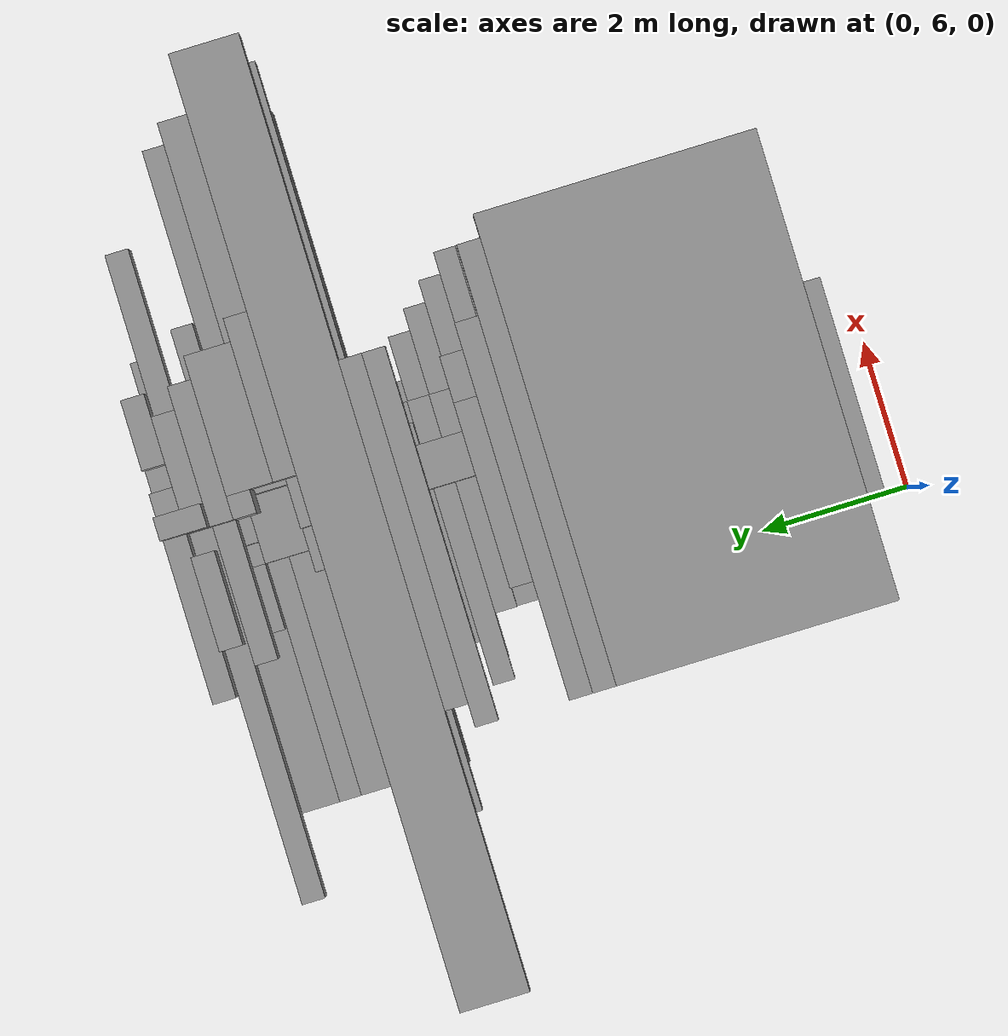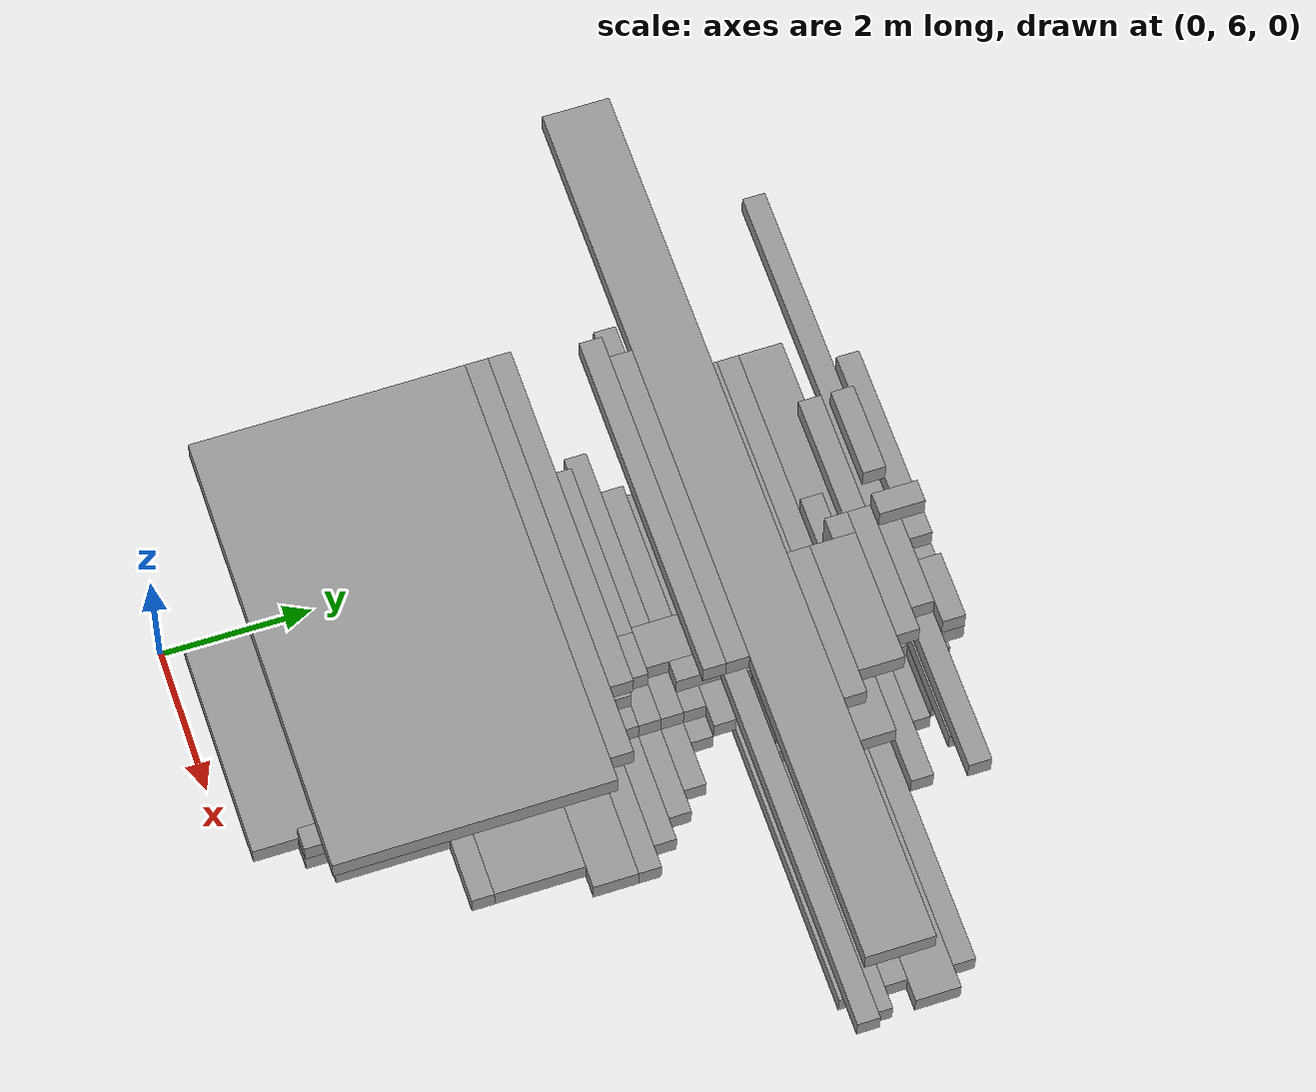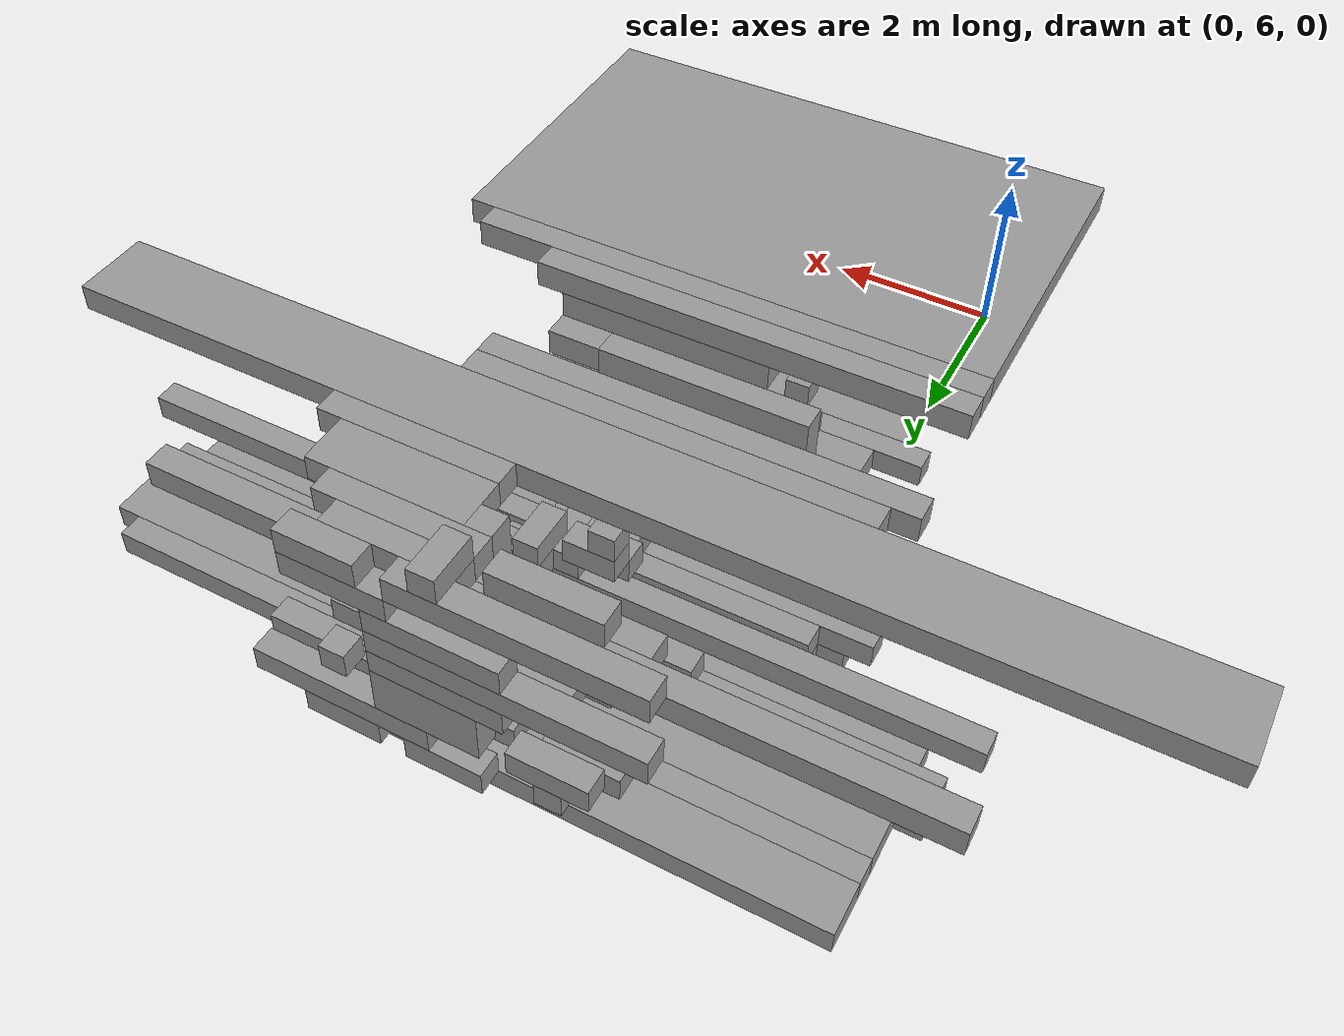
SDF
<sdf version="1.6">
 <world name="bt_world">
  <include><uri>model://sun</uri></include>
  <model name="obstacle_1805">
   <static>true</static>
   <pose>1.65 13.049999999999999 2.55 0 0 0</pose>
   <link name="link">
    <collision name="collision">
     <geometry><box><size>12.299999999999999 0.8999999999999999 0.3</size></box></geometry>
    </collision>
    <visual name="visual">
     <geometry><box><size>12.299999999999999 0.8999999999999999 0.3</size></box></geometry>
     <material><ambient>0.5 0.5 0.5 1</ambient><diffuse>0.6 0.6 0.6 1</diffuse></material>
    </visual>
   </link>
  </model>
  <model name="obstacle_1875">
   <static>true</static>
   <pose>1.5 14.85 2.25 0 0 0</pose>
   <link name="link">
    <collision name="collision"><geometry><box><size>8.4 0.3 0.3</size></box></geometry></collision>
    <visual name="visual">
     <geometry><box><size>8.4 0.3 0.3</size></box></geometry>
     <material><ambient>0.5 0.5 0.5 1</ambient><diffuse>0.6 0.6 0.6 1</diffuse></material>
    </visual>
   </link>
  </model>
  <model name="obstacle_1887">
   <static>true</static>
   <pose>2.6999999999999997 12.75 0.44999999999999996 0 0 0</pose>
   <link name="link">
    <collision name="collision"><geometry><box><size>10.2 0.3 0.3</size></box></geometry></collision>
    <visual name="visual">
     <geometry><box><size>10.2 0.3 0.3</size></box></geometry>
     <material><ambient>0.5 0.5 0.5 1</ambient><diffuse>0.6 0.6 0.6 1</diffuse></material>
    </visual>
   </link>
  </model>
  <model name="obstacle_1893">
   <static>true</static>
   <pose>2.6999999999999997 13.049999999999999 -0.15 0 0 0</pose>
   <link name="link">
    <collision name="collision"><geometry><box><size>9.6 0.3 0.3</size></box></geometry></collision>
    <visual name="visual">
     <geometry><box><size>9.6 0.3 0.3</size></box></geometry>
     <material><ambient>0.5 0.5 0.5 1</ambient><diffuse>0.6 0.6 0.6 1</diffuse></material>
    </visual>
   </link>
  </model>
  <model name="obstacle_1894">
   <static>true</static>
   <pose>2.55 13.35 -0.15 0 0 0</pose>
   <link name="link">
    <collision name="collision"><geometry><box><size>9.299999999999999 0.3 0.3</size></box></geometry></collision>
    <visual name="visual">
     <geometry><box><size>9.299999999999999 0.3 0.3</size></box></geometry>
     <material><ambient>0.5 0.5 0.5 1</ambient><diffuse>0.6 0.6 0.6 1</diffuse></material>
    </visual>
   </link>
  </model>
  <model name="obstacle_1914">
   <static>true</static>
   <pose>2.6999999999999997 12.75 -0.15 0 0 0</pose>
   <link name="link">
    <collision name="collision"><geometry><box><size>9.0 0.3 0.3</size></box></geometry></collision>
    <visual name="visual">
     <geometry><box><size>9.0 0.3 0.3</size></box></geometry>
     <material><ambient>0.5 0.5 0.5 1</ambient><diffuse>0.6 0.6 0.6 1</diffuse></material>
    </visual>
   </link>
  </model>
  <model name="obstacle_1915">
   <static>true</static>
   <pose>2.85 13.799999999999999 -0.15 0 0 0</pose>
   <link name="link">
    <collision name="collision"><geometry><box><size>9.299999999999999 0.6 0.3</size></box></geometry></collision>
    <visual name="visual">
     <geometry><box><size>9.299999999999999 0.6 0.3</size></box></geometry>
     <material><ambient>0.5 0.5 0.5 1</ambient><diffuse>0.6 0.6 0.6 1</diffuse></material>
    </visual>
   </link>
  </model>
  <model name="obstacle_1916">
   <static>true</static>
   <pose>2.6999999999999997 14.25 -0.15 0 0 0</pose>
   <link name="link">
    <collision name="collision"><geometry><box><size>9.0 0.3 0.3</size></box></geometry></collision>
    <visual name="visual">
     <geometry><box><size>9.0 0.3 0.3</size></box></geometry>
     <material><ambient>0.5 0.5 0.5 1</ambient><diffuse>0.6 0.6 0.6 1</diffuse></material>
    </visual>
   </link>
  </model>
  <model name="obstacle_1917">
   <static>true</static>
   <pose>1.05 14.7 -0.15 0 0 0</pose>
   <link name="link">
    <collision name="collision"><geometry><box><size>5.7 0.6 0.3</size></box></geometry></collision>
    <visual name="visual">
     <geometry><box><size>5.7 0.6 0.3</size></box></geometry>
     <material><ambient>0.5 0.5 0.5 1</ambient><diffuse>0.6 0.6 0.6 1</diffuse></material>
    </visual>
   </link>
  </model>
  <model name="obstacle_2006">
   <static>true</static>
   <pose>1.7999999999999998 8.7 2.85 0 0 0</pose>
   <link name="link">
    <collision name="collision">
     <geometry><box><size>6.0 3.5999999999999996 0.3</size></box></geometry>
    </collision>
    <visual name="visual">
     <geometry><box><size>6.0 3.5999999999999996 0.3</size></box></geometry>
     <material><ambient>0.5 0.5 0.5 1</ambient><diffuse>0.6 0.6 0.6 1</diffuse></material>
    </visual>
   </link>
  </model>
  <model name="obstacle_2029">
   <static>true</static>
   <pose>1.65 10.65 2.85 0 0 0</pose>
   <link name="link">
    <collision name="collision"><geometry><box><size>5.7 0.3 0.3</size></box></geometry></collision>
    <visual name="visual">
     <geometry><box><size>5.7 0.3 0.3</size></box></geometry>
     <material><ambient>0.5 0.5 0.5 1</ambient><diffuse>0.6 0.6 0.6 1</diffuse></material>
    </visual>
   </link>
  </model>
  <model name="obstacle_2030">
   <static>true</static>
   <pose>1.2 10.95 2.85 0 0 0</pose>
   <link name="link">
    <collision name="collision"><geometry><box><size>4.8 0.3 0.3</size></box></geometry></collision>
    <visual name="visual">
     <geometry><box><size>4.8 0.3 0.3</size></box></geometry>
     <material><ambient>0.5 0.5 0.5 1</ambient><diffuse>0.6 0.6 0.6 1</diffuse></material>
    </visual>
   </link>
  </model>
  <model name="obstacle_2039">
   <static>true</static>
   <pose>1.2 12.15 2.55 0 0 0</pose>
   <link name="link">
    <collision name="collision"><geometry><box><size>4.8 0.3 0.3</size></box></geometry></collision>
    <visual name="visual">
     <geometry><box><size>4.8 0.3 0.3</size></box></geometry>
     <material><ambient>0.5 0.5 0.5 1</ambient><diffuse>0.6 0.6 0.6 1</diffuse></material>
    </visual>
   </link>
  </model>
  <model name="obstacle_2092">
   <static>true</static>
   <pose>1.05 11.85 0.15 0 0 0</pose>
   <link name="link">
    <collision name="collision"><geometry><box><size>3.9 0.3 0.3</size></box></geometry></collision>
    <visual name="visual">
     <geometry><box><size>3.9 0.3 0.3</size></box></geometry>
     <material><ambient>0.5 0.5 0.5 1</ambient><diffuse>0.6 0.6 0.6 1</diffuse></material>
    </visual>
   </link>
  </model>
  <model name="obstacle_2095">
   <static>true</static>
   <pose>1.3499999999999999 12.45 2.55 0 0 0</pose>
   <link name="link">
    <collision name="collision"><geometry><box><size>4.5 0.3 0.3</size></box></geometry></collision>
    <visual name="visual">
     <geometry><box><size>4.5 0.3 0.3</size></box></geometry>
     <material><ambient>0.5 0.5 0.5 1</ambient><diffuse>0.6 0.6 0.6 1</diffuse></material>
    </visual>
   </link>
  </model>
  <model name="obstacle_2114">
   <static>true</static>
   <pose>1.65 11.85 -0.15 0 0 0</pose>
   <link name="link">
    <collision name="collision"><geometry><box><size>4.5 0.3 0.3</size></box></geometry></collision>
    <visual name="visual">
     <geometry><box><size>4.5 0.3 0.3</size></box></geometry>
     <material><ambient>0.5 0.5 0.5 1</ambient><diffuse>0.6 0.6 0.6 1</diffuse></material>
    </visual>
   </link>
  </model>
  <model name="obstacle_2136">
   <static>true</static>
   <pose>2.1 8.85 -0.15 0 0 0</pose>
   <link name="link">
    <collision name="collision"><geometry><box><size>4.8 0.3 0.3</size></box></geometry></collision>
    <visual name="visual">
     <geometry><box><size>4.8 0.3 0.3</size></box></geometry>
     <material><ambient>0.5 0.5 0.5 1</ambient><diffuse>0.6 0.6 0.6 1</diffuse></material>
    </visual>
   </link>
  </model>
  <model name="obstacle_2139">
   <static>true</static>
   <pose>1.5 12.15 -0.15 0 0 0</pose>
   <link name="link">
    <collision name="collision">
     <geometry><box><size>3.5999999999999996 0.3 0.3</size></box></geometry>
    </collision>
    <visual name="visual">
     <geometry><box><size>3.5999999999999996 0.3 0.3</size></box></geometry>
     <material><ambient>0.5 0.5 0.5 1</ambient><diffuse>0.6 0.6 0.6 1</diffuse></material>
    </visual>
   </link>
  </model>
  <model name="obstacle_2140">
   <static>true</static>
   <pose>1.3499999999999999 12.15 0.15 0 0 0</pose>
   <link name="link">
    <collision name="collision"><geometry><box><size>3.3 0.3 0.3</size></box></geometry></collision>
    <visual name="visual">
     <geometry><box><size>3.3 0.3 0.3</size></box></geometry>
     <material><ambient>0.5 0.5 0.5 1</ambient><diffuse>0.6 0.6 0.6 1</diffuse></material>
    </visual>
   </link>
  </model>
  <model name="obstacle_2141">
   <static>true</static>
   <pose>1.3499999999999999 12.45 -0.15 0 0 0</pose>
   <link name="link">
    <collision name="collision"><geometry><box><size>3.3 0.3 0.3</size></box></geometry></collision>
    <visual name="visual">
     <geometry><box><size>3.3 0.3 0.3</size></box></geometry>
     <material><ambient>0.5 0.5 0.5 1</ambient><diffuse>0.6 0.6 0.6 1</diffuse></material>
    </visual>
   </link>
  </model>
  <model name="obstacle_2156">
   <static>true</static>
   <pose>1.5 7.5 -0.15 0 0 0</pose>
   <link name="link">
    <collision name="collision"><geometry><box><size>3.0 2.4 0.3</size></box></geometry></collision>
    <visual name="visual">
     <geometry><box><size>3.0 2.4 0.3</size></box></geometry>
     <material><ambient>0.5 0.5 0.5 1</ambient><diffuse>0.6 0.6 0.6 1</diffuse></material>
    </visual>
   </link>
  </model>
  <model name="obstacle_2157">
   <static>true</static>
   <pose>2.25 11.25 -0.15 0 0 0</pose>
   <link name="link">
    <collision name="collision"><geometry><box><size>4.5 0.3 0.3</size></box></geometry></collision>
    <visual name="visual">
     <geometry><box><size>4.5 0.3 0.3</size></box></geometry>
     <material><ambient>0.5 0.5 0.5 1</ambient><diffuse>0.6 0.6 0.6 1</diffuse></material>
    </visual>
   </link>
  </model>
  <model name="obstacle_2158">
   <static>true</static>
   <pose>1.5 11.549999999999999 0.15 0 0 0</pose>
   <link name="link">
    <collision name="collision"><geometry><box><size>3.0 0.3 0.3</size></box></geometry></collision>
    <visual name="visual">
     <geometry><box><size>3.0 0.3 0.3</size></box></geometry>
     <material><ambient>0.5 0.5 0.5 1</ambient><diffuse>0.6 0.6 0.6 1</diffuse></material>
    </visual>
   </link>
  </model>
  <model name="obstacle_2161">
   <static>true</static>
   <pose>1.5 15.149999999999999 1.65 0 0 0</pose>
   <link name="link">
    <collision name="collision"><geometry><box><size>3.0 0.3 0.3</size></box></geometry></collision>
    <visual name="visual">
     <geometry><box><size>3.0 0.3 0.3</size></box></geometry>
     <material><ambient>0.5 0.5 0.5 1</ambient><diffuse>0.6 0.6 0.6 1</diffuse></material>
    </visual>
   </link>
  </model>
  <model name="obstacle_2162">
   <static>true</static>
   <pose>1.3499999999999999 15.149999999999999 2.55 0 0 0</pose>
   <link name="link">
    <collision name="collision">
     <geometry><box><size>2.6999999999999997 0.3 0.3</size></box></geometry>
    </collision>
    <visual name="visual">
     <geometry><box><size>2.6999999999999997 0.3 0.3</size></box></geometry>
     <material><ambient>0.5 0.5 0.5 1</ambient><diffuse>0.6 0.6 0.6 1</diffuse></material>
    </visual>
   </link>
  </model>
  <model name="obstacle_2173">
   <static>true</static>
   <pose>2.4 9.6 -0.15 0 0 0</pose>
   <link name="link">
    <collision name="collision"><geometry><box><size>4.2 1.2 0.3</size></box></geometry></collision>
    <visual name="visual">
     <geometry><box><size>4.2 1.2 0.3</size></box></geometry>
     <material><ambient>0.5 0.5 0.5 1</ambient><diffuse>0.6 0.6 0.6 1</diffuse></material>
    </visual>
   </link>
  </model>
  <model name="obstacle_2174">
   <static>true</static>
   <pose>1.5 11.25 1.95 0 0 0</pose>
   <link name="link">
    <collision name="collision">
     <geometry><box><size>2.4 0.3 0.8999999999999999</size></box></geometry>
    </collision>
    <visual name="visual">
     <geometry><box><size>2.4 0.3 0.8999999999999999</size></box></geometry>
     <material><ambient>0.5 0.5 0.5 1</ambient><diffuse>0.6 0.6 0.6 1</diffuse></material>
    </visual>
   </link>
  </model>
  <model name="obstacle_2175">
   <static>true</static>
   <pose>2.25 11.549999999999999 -0.15 0 0 0</pose>
   <link name="link">
    <collision name="collision"><geometry><box><size>3.9 0.3 0.3</size></box></geometry></collision>
    <visual name="visual">
     <geometry><box><size>3.9 0.3 0.3</size></box></geometry>
     <material><ambient>0.5 0.5 0.5 1</ambient><diffuse>0.6 0.6 0.6 1</diffuse></material>
    </visual>
   </link>
  </model>
  <model name="obstacle_2177">
   <static>true</static>
   <pose>1.65 14.549999999999999 2.25 0 0 0</pose>
   <link name="link">
    <collision name="collision">
     <geometry><box><size>2.6999999999999997 0.3 0.3</size></box></geometry>
    </collision>
    <visual name="visual">
     <geometry><box><size>2.6999999999999997 0.3 0.3</size></box></geometry>
     <material><ambient>0.5 0.5 0.5 1</ambient><diffuse>0.6 0.6 0.6 1</diffuse></material>
    </visual>
   </link>
  </model>
  <model name="obstacle_2194">
   <static>true</static>
   <pose>2.6999999999999997 10.95 -0.15 0 0 0</pose>
   <link name="link">
    <collision name="collision"><geometry><box><size>4.2 0.3 0.3</size></box></geometry></collision>
    <visual name="visual">
     <geometry><box><size>4.2 0.3 0.3</size></box></geometry>
     <material><ambient>0.5 0.5 0.5 1</ambient><diffuse>0.6 0.6 0.6 1</diffuse></material>
    </visual>
   </link>
  </model>
  <model name="obstacle_2195">
   <static>true</static>
   <pose>1.65 11.25 1.3499999999999999 0 0 0</pose>
   <link name="link">
    <collision name="collision"><geometry><box><size>2.1 0.3 0.3</size></box></geometry></collision>
    <visual name="visual">
     <geometry><box><size>2.1 0.3 0.3</size></box></geometry>
     <material><ambient>0.5 0.5 0.5 1</ambient><diffuse>0.6 0.6 0.6 1</diffuse></material>
    </visual>
   </link>
  </model>
  <model name="obstacle_2197">
   <static>true</static>
   <pose>1.65 13.049999999999999 0.15 0 0 0</pose>
   <link name="link">
    <collision name="collision"><geometry><box><size>2.1 0.3 0.3</size></box></geometry></collision>
    <visual name="visual">
     <geometry><box><size>2.1 0.3 0.3</size></box></geometry>
     <material><ambient>0.5 0.5 0.5 1</ambient><diffuse>0.6 0.6 0.6 1</diffuse></material>
    </visual>
   </link>
  </model>
  <model name="obstacle_2198">
   <static>true</static>
   <pose>1.05 14.549999999999999 0.15 0 0 0</pose>
   <link name="link">
    <collision name="collision">
     <geometry><box><size>0.8999999999999999 0.3 0.3</size></box></geometry>
    </collision>
    <visual name="visual">
     <geometry><box><size>0.8999999999999999 0.3 0.3</size></box></geometry>
     <material><ambient>0.5 0.5 0.5 1</ambient><diffuse>0.6 0.6 0.6 1</diffuse></material>
    </visual>
   </link>
  </model>
  <model name="obstacle_2199">
   <static>true</static>
   <pose>1.2 14.85 2.85 0 0 0</pose>
   <link name="link">
    <collision name="collision"><geometry><box><size>1.2 0.3 0.3</size></box></geometry></collision>
    <visual name="visual">
     <geometry><box><size>1.2 0.3 0.3</size></box></geometry>
     <material><ambient>0.5 0.5 0.5 1</ambient><diffuse>0.6 0.6 0.6 1</diffuse></material>
    </visual>
   </link>
  </model>
  <model name="obstacle_2200">
   <static>true</static>
   <pose>1.05 15.149999999999999 0.75 0 0 0</pose>
   <link name="link">
    <collision name="collision">
     <geometry><box><size>0.8999999999999999 0.3 0.3</size></box></geometry>
    </collision>
    <visual name="visual">
     <geometry><box><size>0.8999999999999999 0.3 0.3</size></box></geometry>
     <material><ambient>0.5 0.5 0.5 1</ambient><diffuse>0.6 0.6 0.6 1</diffuse></material>
    </visual>
   </link>
  </model>
  <model name="obstacle_2209">
   <static>true</static>
   <pose>1.3499999999999999 9.75 0.44999999999999996 0 0 0</pose>
   <link name="link">
    <collision name="collision">
     <geometry><box><size>0.8999999999999999 0.8999999999999999 0.3</size></box></geometry>
    </collision>
    <visual name="visual">
     <geometry><box><size>0.8999999999999999 0.8999999999999999 0.3</size></box></geometry>
     <material><ambient>0.5 0.5 0.5 1</ambient><diffuse>0.6 0.6 0.6 1</diffuse></material>
    </visual>
   </link>
  </model>
  <model name="obstacle_2210">
   <static>true</static>
   <pose>2.85 10.5 -0.15 0 0 0</pose>
   <link name="link">
    <collision name="collision"><geometry><box><size>3.9 0.6 0.3</size></box></geometry></collision>
    <visual name="visual">
     <geometry><box><size>3.9 0.6 0.3</size></box></geometry>
     <material><ambient>0.5 0.5 0.5 1</ambient><diffuse>0.6 0.6 0.6 1</diffuse></material>
    </visual>
   </link>
  </model>
  <model name="obstacle_2211">
   <static>true</static>
   <pose>2.1 10.95 2.55 0 0 0</pose>
   <link name="link">
    <collision name="collision"><geometry><box><size>2.4 0.3 0.3</size></box></geometry></collision>
    <visual name="visual">
     <geometry><box><size>2.4 0.3 0.3</size></box></geometry>
     <material><ambient>0.5 0.5 0.5 1</ambient><diffuse>0.6 0.6 0.6 1</diffuse></material>
    </visual>
   </link>
  </model>
  <model name="obstacle_2213">
   <static>true</static>
   <pose>1.65 11.25 1.05 0 0 0</pose>
   <link name="link">
    <collision name="collision"><geometry><box><size>1.5 0.3 0.3</size></box></geometry></collision>
    <visual name="visual">
     <geometry><box><size>1.5 0.3 0.3</size></box></geometry>
     <material><ambient>0.5 0.5 0.5 1</ambient><diffuse>0.6 0.6 0.6 1</diffuse></material>
    </visual>
   </link>
  </model>
  <model name="obstacle_2214">
   <static>true</static>
   <pose>1.65 12.75 2.25 0 0 0</pose>
   <link name="link">
    <collision name="collision"><geometry><box><size>1.5 0.3 0.3</size></box></geometry></collision>
    <visual name="visual">
     <geometry><box><size>1.5 0.3 0.3</size></box></geometry>
     <material><ambient>0.5 0.5 0.5 1</ambient><diffuse>0.6 0.6 0.6 1</diffuse></material>
    </visual>
   </link>
  </model>
  <model name="obstacle_2215">
   <static>true</static>
   <pose>1.05 15.149999999999999 0.44999999999999996 0 0 0</pose>
   <link name="link">
    <collision name="collision"><geometry><box><size>0.3 0.3 0.3</size></box></geometry></collision>
    <visual name="visual">
     <geometry><box><size>0.3 0.3 0.3</size></box></geometry>
     <material><ambient>0.5 0.5 0.5 1</ambient><diffuse>0.6 0.6 0.6 1</diffuse></material>
    </visual>
   </link>
  </model>
  <model name="obstacle_2221">
   <static>true</static>
   <pose>1.3499999999999999 8.85 0.44999999999999996 0 0 0</pose>
   <link name="link">
    <collision name="collision"><geometry><box><size>0.3 0.3 0.3</size></box></geometry></collision>
    <visual name="visual">
     <geometry><box><size>0.3 0.3 0.3</size></box></geometry>
     <material><ambient>0.5 0.5 0.5 1</ambient><diffuse>0.6 0.6 0.6 1</diffuse></material>
    </visual>
   </link>
  </model>
  <model name="obstacle_2223">
   <static>true</static>
   <pose>1.95 13.35 0.15 0 0 0</pose>
   <link name="link">
    <collision name="collision"><geometry><box><size>1.5 0.3 0.3</size></box></geometry></collision>
    <visual name="visual">
     <geometry><box><size>1.5 0.3 0.3</size></box></geometry>
     <material><ambient>0.5 0.5 0.5 1</ambient><diffuse>0.6 0.6 0.6 1</diffuse></material>
    </visual>
   </link>
  </model>
  <model name="obstacle_2224">
   <static>true</static>
   <pose>1.65 13.65 0.15 0 0 0</pose>
   <link name="link">
    <collision name="collision">
     <geometry><box><size>0.8999999999999999 0.3 0.3</size></box></geometry>
    </collision>
    <visual name="visual">
     <geometry><box><size>0.8999999999999999 0.3 0.3</size></box></geometry>
     <material><ambient>0.5 0.5 0.5 1</ambient><diffuse>0.6 0.6 0.6 1</diffuse></material>
    </visual>
   </link>
  </model>
  <model name="obstacle_2231">
   <static>true</static>
   <pose>1.65 8.549999999999999 0.15 0 0 0</pose>
   <link name="link">
    <collision name="collision">
     <geometry><box><size>0.3 0.8999999999999999 0.3</size></box></geometry>
    </collision>
    <visual name="visual">
     <geometry><box><size>0.3 0.8999999999999999 0.3</size></box></geometry>
     <material><ambient>0.5 0.5 0.5 1</ambient><diffuse>0.6 0.6 0.6 1</diffuse></material>
    </visual>
   </link>
  </model>
  <model name="obstacle_2232">
   <static>true</static>
   <pose>2.1 10.049999999999999 0.15 0 0 0</pose>
   <link name="link">
    <collision name="collision"><geometry><box><size>1.2 0.3 0.3</size></box></geometry></collision>
    <visual name="visual">
     <geometry><box><size>1.2 0.3 0.3</size></box></geometry>
     <material><ambient>0.5 0.5 0.5 1</ambient><diffuse>0.6 0.6 0.6 1</diffuse></material>
    </visual>
   </link>
  </model>
  <model name="obstacle_2233">
   <static>true</static>
   <pose>1.65 10.799999999999999 0.44999999999999996 0 0 0</pose>
   <link name="link">
    <collision name="collision"><geometry><box><size>0.3 1.2 0.3</size></box></geometry></collision>
    <visual name="visual">
     <geometry><box><size>0.3 1.2 0.3</size></box></geometry>
     <material><ambient>0.5 0.5 0.5 1</ambient><diffuse>0.6 0.6 0.6 1</diffuse></material>
    </visual>
   </link>
  </model>
  <model name="obstacle_2234">
   <static>true</static>
   <pose>2.4 10.95 0.15 0 0 0</pose>
   <link name="link">
    <collision name="collision">
     <geometry><box><size>1.7999999999999998 0.3 0.3</size></box></geometry>
    </collision>
    <visual name="visual">
     <geometry><box><size>1.7999999999999998 0.3 0.3</size></box></geometry>
     <material><ambient>0.5 0.5 0.5 1</ambient><diffuse>0.6 0.6 0.6 1</diffuse></material>
    </visual>
   </link>
  </model>
  <model name="obstacle_2235">
   <static>true</static>
   <pose>1.65 12.75 1.05 0 0 0</pose>
   <link name="link">
    <collision name="collision"><geometry><box><size>0.3 0.3 0.3</size></box></geometry></collision>
    <visual name="visual">
     <geometry><box><size>0.3 0.3 0.3</size></box></geometry>
     <material><ambient>0.5 0.5 0.5 1</ambient><diffuse>0.6 0.6 0.6 1</diffuse></material>
    </visual>
   </link>
  </model>
  <model name="obstacle_2236">
   <static>true</static>
   <pose>1.7999999999999998 13.049999999999999 1.3499999999999999 0 0 0</pose>
   <link name="link">
    <collision name="collision"><geometry><box><size>0.6 0.3 0.3</size></box></geometry></collision>
    <visual name="visual">
     <geometry><box><size>0.6 0.3 0.3</size></box></geometry>
     <material><ambient>0.5 0.5 0.5 1</ambient><diffuse>0.6 0.6 0.6 1</diffuse></material>
    </visual>
   </link>
  </model>
  <model name="obstacle_2237">
   <static>true</static>
   <pose>1.65 13.049999999999999 1.65 0 0 0</pose>
   <link name="link">
    <collision name="collision"><geometry><box><size>0.3 0.3 0.3</size></box></geometry></collision>
    <visual name="visual">
     <geometry><box><size>0.3 0.3 0.3</size></box></geometry>
     <material><ambient>0.5 0.5 0.5 1</ambient><diffuse>0.6 0.6 0.6 1</diffuse></material>
    </visual>
   </link>
  </model>
  <model name="obstacle_2238">
   <static>true</static>
   <pose>2.55 13.35 0.44999999999999996 0 0 0</pose>
   <link name="link">
    <collision name="collision"><geometry><box><size>2.1 0.3 0.3</size></box></geometry></collision>
    <visual name="visual">
     <geometry><box><size>2.1 0.3 0.3</size></box></geometry>
     <material><ambient>0.5 0.5 0.5 1</ambient><diffuse>0.6 0.6 0.6 1</diffuse></material>
    </visual>
   </link>
  </model>
  <model name="obstacle_2239">
   <static>true</static>
   <pose>2.1 14.1 0.15 0 0 0</pose>
   <link name="link">
    <collision name="collision"><geometry><box><size>1.2 0.6 0.3</size></box></geometry></collision>
    <visual name="visual">
     <geometry><box><size>1.2 0.6 0.3</size></box></geometry>
     <material><ambient>0.5 0.5 0.5 1</ambient><diffuse>0.6 0.6 0.6 1</diffuse></material>
    </visual>
   </link>
  </model>
  <model name="obstacle_2240">
   <static>true</static>
   <pose>2.25 15.149999999999999 1.3499999999999999 0 0 0</pose>
   <link name="link">
    <collision name="collision"><geometry><box><size>1.5 0.3 0.3</size></box></geometry></collision>
    <visual name="visual">
     <geometry><box><size>1.5 0.3 0.3</size></box></geometry>
     <material><ambient>0.5 0.5 0.5 1</ambient><diffuse>0.6 0.6 0.6 1</diffuse></material>
    </visual>
   </link>
  </model>
  <model name="obstacle_2241">
   <static>true</static>
   <pose>2.25 15.149999999999999 1.95 0 0 0</pose>
   <link name="link">
    <collision name="collision"><geometry><box><size>1.5 0.3 0.3</size></box></geometry></collision>
    <visual name="visual">
     <geometry><box><size>1.5 0.3 0.3</size></box></geometry>
     <material><ambient>0.5 0.5 0.5 1</ambient><diffuse>0.6 0.6 0.6 1</diffuse></material>
    </visual>
   </link>
  </model>
  <model name="obstacle_2248">
   <static>true</static>
   <pose>1.95 8.85 0.15 0 0 0</pose>
   <link name="link">
    <collision name="collision"><geometry><box><size>0.3 0.3 0.3</size></box></geometry></collision>
    <visual name="visual">
     <geometry><box><size>0.3 0.3 0.3</size></box></geometry>
     <material><ambient>0.5 0.5 0.5 1</ambient><diffuse>0.6 0.6 0.6 1</diffuse></material>
    </visual>
   </link>
  </model>
  <model name="obstacle_2249">
   <static>true</static>
   <pose>1.95 10.049999999999999 0.44999999999999996 0 0 0</pose>
   <link name="link">
    <collision name="collision"><geometry><box><size>0.3 0.3 0.3</size></box></geometry></collision>
    <visual name="visual">
     <geometry><box><size>0.3 0.3 0.3</size></box></geometry>
     <material><ambient>0.5 0.5 0.5 1</ambient><diffuse>0.6 0.6 0.6 1</diffuse></material>
    </visual>
   </link>
  </model>
  <model name="obstacle_2250">
   <static>true</static>
   <pose>2.4 10.5 0.15 0 0 0</pose>
   <link name="link">
    <collision name="collision"><geometry><box><size>1.2 0.6 0.3</size></box></geometry></collision>
    <visual name="visual">
     <geometry><box><size>1.2 0.6 0.3</size></box></geometry>
     <material><ambient>0.5 0.5 0.5 1</ambient><diffuse>0.6 0.6 0.6 1</diffuse></material>
    </visual>
   </link>
  </model>
  <model name="obstacle_2251">
   <static>true</static>
   <pose>2.1 11.549999999999999 0.44999999999999996 0 0 0</pose>
   <link name="link">
    <collision name="collision"><geometry><box><size>0.6 2.1 0.3</size></box></geometry></collision>
    <visual name="visual">
     <geometry><box><size>0.6 2.1 0.3</size></box></geometry>
     <material><ambient>0.5 0.5 0.5 1</ambient><diffuse>0.6 0.6 0.6 1</diffuse></material>
    </visual>
   </link>
  </model>
  <model name="obstacle_2252">
   <static>true</static>
   <pose>3.0 13.65 0.44999999999999996 0 0 0</pose>
   <link name="link">
    <collision name="collision"><geometry><box><size>2.4 0.3 0.3</size></box></geometry></collision>
    <visual name="visual">
     <geometry><box><size>2.4 0.3 0.3</size></box></geometry>
     <material><ambient>0.5 0.5 0.5 1</ambient><diffuse>0.6 0.6 0.6 1</diffuse></material>
    </visual>
   </link>
  </model>
  <model name="obstacle_2253">
   <static>true</static>
   <pose>3.3 14.549999999999999 0.15 0 0 0</pose>
   <link name="link">
    <collision name="collision"><geometry><box><size>3.0 0.3 0.3</size></box></geometry></collision>
    <visual name="visual">
     <geometry><box><size>3.0 0.3 0.3</size></box></geometry>
     <material><ambient>0.5 0.5 0.5 1</ambient><diffuse>0.6 0.6 0.6 1</diffuse></material>
    </visual>
   </link>
  </model>
  <model name="obstacle_2254">
   <static>true</static>
   <pose>2.25 15.149999999999999 0.15 0 0 0</pose>
   <link name="link">
    <collision name="collision">
     <geometry><box><size>0.8999999999999999 0.3 0.3</size></box></geometry>
    </collision>
    <visual name="visual">
     <geometry><box><size>0.8999999999999999 0.3 0.3</size></box></geometry>
     <material><ambient>0.5 0.5 0.5 1</ambient><diffuse>0.6 0.6 0.6 1</diffuse></material>
    </visual>
   </link>
  </model>
  <model name="obstacle_2255">
   <static>true</static>
   <pose>2.4 15.149999999999999 0.8999999999999999 0 0 0</pose>
   <link name="link">
    <collision name="collision"><geometry><box><size>1.2 0.3 0.6</size></box></geometry></collision>
    <visual name="visual">
     <geometry><box><size>1.2 0.3 0.6</size></box></geometry>
     <material><ambient>0.5 0.5 0.5 1</ambient><diffuse>0.6 0.6 0.6 1</diffuse></material>
    </visual>
   </link>
  </model>
  <model name="obstacle_2260">
   <static>true</static>
   <pose>2.25 10.35 0.44999999999999996 0 0 0</pose>
   <link name="link">
    <collision name="collision"><geometry><box><size>0.3 0.3 0.3</size></box></geometry></collision>
    <visual name="visual">
     <geometry><box><size>0.3 0.3 0.3</size></box></geometry>
     <material><ambient>0.5 0.5 0.5 1</ambient><diffuse>0.6 0.6 0.6 1</diffuse></material>
    </visual>
   </link>
  </model>
  <model name="obstacle_2261">
   <static>true</static>
   <pose>2.55 10.95 2.25 0 0 0</pose>
   <link name="link">
    <collision name="collision">
     <geometry><box><size>0.8999999999999999 0.3 0.3</size></box></geometry>
    </collision>
    <visual name="visual">
     <geometry><box><size>0.8999999999999999 0.3 0.3</size></box></geometry>
     <material><ambient>0.5 0.5 0.5 1</ambient><diffuse>0.6 0.6 0.6 1</diffuse></material>
    </visual>
   </link>
  </model>
  <model name="obstacle_2262">
   <static>true</static>
   <pose>2.4 12.75 0.75 0 0 0</pose>
   <link name="link">
    <collision name="collision"><geometry><box><size>0.6 0.3 0.3</size></box></geometry></collision>
    <visual name="visual">
     <geometry><box><size>0.6 0.3 0.3</size></box></geometry>
     <material><ambient>0.5 0.5 0.5 1</ambient><diffuse>0.6 0.6 0.6 1</diffuse></material>
    </visual>
   </link>
  </model>
  <model name="obstacle_2263">
   <static>true</static>
   <pose>2.25 14.25 2.4 0 0 0</pose>
   <link name="link">
    <collision name="collision"><geometry><box><size>0.3 0.3 0.6</size></box></geometry></collision>
    <visual name="visual">
     <geometry><box><size>0.3 0.3 0.6</size></box></geometry>
     <material><ambient>0.5 0.5 0.5 1</ambient><diffuse>0.6 0.6 0.6 1</diffuse></material>
    </visual>
   </link>
  </model>
  <model name="obstacle_2264">
   <static>true</static>
   <pose>3.0 14.549999999999999 2.55 0 0 0</pose>
   <link name="link">
    <collision name="collision">
     <geometry><box><size>1.7999999999999998 0.3 0.3</size></box></geometry>
    </collision>
    <visual name="visual">
     <geometry><box><size>1.7999999999999998 0.3 0.3</size></box></geometry>
     <material><ambient>0.5 0.5 0.5 1</ambient><diffuse>0.6 0.6 0.6 1</diffuse></material>
    </visual>
   </link>
  </model>
  <model name="obstacle_2265">
   <static>true</static>
   <pose>2.55 14.85 0.15 0 0 0</pose>
   <link name="link">
    <collision name="collision">
     <geometry><box><size>0.8999999999999999 0.3 0.3</size></box></geometry>
    </collision>
    <visual name="visual">
     <geometry><box><size>0.8999999999999999 0.3 0.3</size></box></geometry>
     <material><ambient>0.5 0.5 0.5 1</ambient><diffuse>0.6 0.6 0.6 1</diffuse></material>
    </visual>
   </link>
  </model>
  <model name="obstacle_2266">
   <static>true</static>
   <pose>2.85 14.85 2.55 0 0 0</pose>
   <link name="link">
    <collision name="collision"><geometry><box><size>1.5 0.3 0.3</size></box></geometry></collision>
    <visual name="visual">
     <geometry><box><size>1.5 0.3 0.3</size></box></geometry>
     <material><ambient>0.5 0.5 0.5 1</ambient><diffuse>0.6 0.6 0.6 1</diffuse></material>
    </visual>
   </link>
  </model>
  <model name="obstacle_2267">
   <static>true</static>
   <pose>2.25 15.0 2.85 0 0 0</pose>
   <link name="link">
    <collision name="collision"><geometry><box><size>0.3 0.6 0.3</size></box></geometry></collision>
    <visual name="visual">
     <geometry><box><size>0.3 0.6 0.3</size></box></geometry>
     <material><ambient>0.5 0.5 0.5 1</ambient><diffuse>0.6 0.6 0.6 1</diffuse></material>
    </visual>
   </link>
  </model>
  <model name="obstacle_2278">
   <static>true</static>
   <pose>2.55 10.95 1.7999999999999998 0 0 0</pose>
   <link name="link">
    <collision name="collision"><geometry><box><size>0.3 0.3 0.6</size></box></geometry></collision>
    <visual name="visual">
     <geometry><box><size>0.3 0.3 0.6</size></box></geometry>
     <material><ambient>0.5 0.5 0.5 1</ambient><diffuse>0.6 0.6 0.6 1</diffuse></material>
    </visual>
   </link>
  </model>
  <model name="obstacle_2279">
   <static>true</static>
   <pose>2.6999999999999997 11.25 0.15 0 0 0</pose>
   <link name="link">
    <collision name="collision"><geometry><box><size>0.6 0.3 0.3</size></box></geometry></collision>
    <visual name="visual">
     <geometry><box><size>0.6 0.3 0.3</size></box></geometry>
     <material><ambient>0.5 0.5 0.5 1</ambient><diffuse>0.6 0.6 0.6 1</diffuse></material>
    </visual>
   </link>
  </model>
  <model name="obstacle_2280">
   <static>true</static>
   <pose>2.55 11.25 0.44999999999999996 0 0 0</pose>
   <link name="link">
    <collision name="collision"><geometry><box><size>0.3 0.3 0.3</size></box></geometry></collision>
    <visual name="visual">
     <geometry><box><size>0.3 0.3 0.3</size></box></geometry>
     <material><ambient>0.5 0.5 0.5 1</ambient><diffuse>0.6 0.6 0.6 1</diffuse></material>
    </visual>
   </link>
  </model>
  <model name="obstacle_2281">
   <static>true</static>
   <pose>2.55 12.299999999999999 0.44999999999999996 0 0 0</pose>
   <link name="link">
    <collision name="collision"><geometry><box><size>0.3 0.6 0.3</size></box></geometry></collision>
    <visual name="visual">
     <geometry><box><size>0.3 0.6 0.3</size></box></geometry>
     <material><ambient>0.5 0.5 0.5 1</ambient><diffuse>0.6 0.6 0.6 1</diffuse></material>
    </visual>
   </link>
  </model>
  <model name="obstacle_2282">
   <static>true</static>
   <pose>2.85 12.45 0.15 0 0 0</pose>
   <link name="link">
    <collision name="collision">
     <geometry><box><size>0.8999999999999999 0.3 0.3</size></box></geometry>
    </collision>
    <visual name="visual">
     <geometry><box><size>0.8999999999999999 0.3 0.3</size></box></geometry>
     <material><ambient>0.5 0.5 0.5 1</ambient><diffuse>0.6 0.6 0.6 1</diffuse></material>
    </visual>
   </link>
  </model>
  <model name="obstacle_2283">
   <static>true</static>
   <pose>2.55 12.9 1.05 0 0 0</pose>
   <link name="link">
    <collision name="collision"><geometry><box><size>0.3 0.6 0.3</size></box></geometry></collision>
    <visual name="visual">
     <geometry><box><size>0.3 0.6 0.3</size></box></geometry>
     <material><ambient>0.5 0.5 0.5 1</ambient><diffuse>0.6 0.6 0.6 1</diffuse></material>
    </visual>
   </link>
  </model>
  <model name="obstacle_2284">
   <static>true</static>
   <pose>2.55 13.2 0.75 0 0 0</pose>
   <link name="link">
    <collision name="collision"><geometry><box><size>0.3 0.6 0.3</size></box></geometry></collision>
    <visual name="visual">
     <geometry><box><size>0.3 0.6 0.3</size></box></geometry>
     <material><ambient>0.5 0.5 0.5 1</ambient><diffuse>0.6 0.6 0.6 1</diffuse></material>
    </visual>
   </link>
  </model>
  <model name="obstacle_2285">
   <static>true</static>
   <pose>3.4499999999999997 13.65 2.55 0 0 0</pose>
   <link name="link">
    <collision name="collision"><geometry><box><size>2.1 0.3 0.3</size></box></geometry></collision>
    <visual name="visual">
     <geometry><box><size>2.1 0.3 0.3</size></box></geometry>
     <material><ambient>0.5 0.5 0.5 1</ambient><diffuse>0.6 0.6 0.6 1</diffuse></material>
    </visual>
   </link>
  </model>
  <model name="obstacle_2286">
   <static>true</static>
   <pose>3.3 14.1 0.44999999999999996 0 0 0</pose>
   <link name="link">
    <collision name="collision">
     <geometry><box><size>1.7999999999999998 0.6 0.3</size></box></geometry>
    </collision>
    <visual name="visual">
     <geometry><box><size>1.7999999999999998 0.6 0.3</size></box></geometry>
     <material><ambient>0.5 0.5 0.5 1</ambient><diffuse>0.6 0.6 0.6 1</diffuse></material>
    </visual>
   </link>
  </model>
  <model name="obstacle_2287">
   <static>true</static>
   <pose>3.3 14.1 2.55 0 0 0</pose>
   <link name="link">
    <collision name="collision">
     <geometry><box><size>1.7999999999999998 0.6 0.3</size></box></geometry>
    </collision>
    <visual name="visual">
     <geometry><box><size>1.7999999999999998 0.6 0.3</size></box></geometry>
     <material><ambient>0.5 0.5 0.5 1</ambient><diffuse>0.6 0.6 0.6 1</diffuse></material>
    </visual>
   </link>
  </model>
  <model name="obstacle_2288">
   <static>true</static>
   <pose>3.4499999999999997 15.149999999999999 0.44999999999999996 0 0 0</pose>
   <link name="link">
    <collision name="collision"><geometry><box><size>2.1 0.3 0.3</size></box></geometry></collision>
    <visual name="visual">
     <geometry><box><size>2.1 0.3 0.3</size></box></geometry>
     <material><ambient>0.5 0.5 0.5 1</ambient><diffuse>0.6 0.6 0.6 1</diffuse></material>
    </visual>
   </link>
  </model>
  <model name="obstacle_2304">
   <static>true</static>
   <pose>3.15 7.949999999999999 0.15 0 0 0</pose>
   <link name="link">
    <collision name="collision">
     <geometry><box><size>0.8999999999999999 0.8999999999999999 0.3</size></box></geometry>
    </collision>
    <visual name="visual">
     <geometry><box><size>0.8999999999999999 0.8999999999999999 0.3</size></box></geometry>
     <material><ambient>0.5 0.5 0.5 1</ambient><diffuse>0.6 0.6 0.6 1</diffuse></material>
    </visual>
   </link>
  </model>
  <model name="obstacle_2305">
   <static>true</static>
   <pose>2.85 10.95 1.95 0 0 0</pose>
   <link name="link">
    <collision name="collision"><geometry><box><size>0.3 0.3 0.3</size></box></geometry></collision>
    <visual name="visual">
     <geometry><box><size>0.3 0.3 0.3</size></box></geometry>
     <material><ambient>0.5 0.5 0.5 1</ambient><diffuse>0.6 0.6 0.6 1</diffuse></material>
    </visual>
   </link>
  </model>
  <model name="obstacle_2306">
   <static>true</static>
   <pose>3.0 11.25 2.25 0 0 0</pose>
   <link name="link">
    <collision name="collision"><geometry><box><size>0.6 0.3 0.3</size></box></geometry></collision>
    <visual name="visual">
     <geometry><box><size>0.6 0.3 0.3</size></box></geometry>
     <material><ambient>0.5 0.5 0.5 1</ambient><diffuse>0.6 0.6 0.6 1</diffuse></material>
    </visual>
   </link>
  </model>
  <model name="obstacle_2307">
   <static>true</static>
   <pose>3.0 12.45 2.25 0 0 0</pose>
   <link name="link">
    <collision name="collision"><geometry><box><size>0.6 0.3 0.3</size></box></geometry></collision>
    <visual name="visual">
     <geometry><box><size>0.6 0.3 0.3</size></box></geometry>
     <material><ambient>0.5 0.5 0.5 1</ambient><diffuse>0.6 0.6 0.6 1</diffuse></material>
    </visual>
   </link>
  </model>
  <model name="obstacle_2310">
   <static>true</static>
   <pose>3.4499999999999997 13.35 0.75 0 0 0</pose>
   <link name="link">
    <collision name="collision"><geometry><box><size>1.5 0.3 0.3</size></box></geometry></collision>
    <visual name="visual">
     <geometry><box><size>1.5 0.3 0.3</size></box></geometry>
     <material><ambient>0.5 0.5 0.5 1</ambient><diffuse>0.6 0.6 0.6 1</diffuse></material>
    </visual>
   </link>
  </model>
  <model name="obstacle_2311">
   <static>true</static>
   <pose>2.85 13.95 2.25 0 0 0</pose>
   <link name="link">
    <collision name="collision">
     <geometry><box><size>0.3 0.8999999999999999 0.3</size></box></geometry>
    </collision>
    <visual name="visual">
     <geometry><box><size>0.3 0.8999999999999999 0.3</size></box></geometry>
     <material><ambient>0.5 0.5 0.5 1</ambient><diffuse>0.6 0.6 0.6 1</diffuse></material>
    </visual>
   </link>
  </model>
  <model name="obstacle_2313">
   <static>true</static>
   <pose>2.85 14.549999999999999 1.3499999999999999 0 0 0</pose>
   <link name="link">
    <collision name="collision">
     <geometry><box><size>0.3 0.8999999999999999 1.5</size></box></geometry>
    </collision>
    <visual name="visual">
     <geometry><box><size>0.3 0.8999999999999999 1.5</size></box></geometry>
     <material><ambient>0.5 0.5 0.5 1</ambient><diffuse>0.6 0.6 0.6 1</diffuse></material>
    </visual>
   </link>
  </model>
  <model name="obstacle_2314">
   <static>true</static>
   <pose>3.3 15.149999999999999 2.25 0 0 0</pose>
   <link name="link">
    <collision name="collision"><geometry><box><size>1.2 0.3 0.3</size></box></geometry></collision>
    <visual name="visual">
     <geometry><box><size>1.2 0.3 0.3</size></box></geometry>
     <material><ambient>0.5 0.5 0.5 1</ambient><diffuse>0.6 0.6 0.6 1</diffuse></material>
    </visual>
   </link>
  </model>
  <model name="obstacle_2344">
   <static>true</static>
   <pose>3.15 7.8 -0.15 0 0 0</pose>
   <link name="link">
    <collision name="collision">
     <geometry><box><size>0.3 1.7999999999999998 0.3</size></box></geometry>
    </collision>
    <visual name="visual">
     <geometry><box><size>0.3 1.7999999999999998 0.3</size></box></geometry>
     <material><ambient>0.5 0.5 0.5 1</ambient><diffuse>0.6 0.6 0.6 1</diffuse></material>
    </visual>
   </link>
  </model>
  <model name="obstacle_2345">
   <static>true</static>
   <pose>3.15 7.199999999999999 0.15 0 0 0</pose>
   <link name="link">
    <collision name="collision"><geometry><box><size>0.3 0.6 0.3</size></box></geometry></collision>
    <visual name="visual">
     <geometry><box><size>0.3 0.6 0.3</size></box></geometry>
     <material><ambient>0.5 0.5 0.5 1</ambient><diffuse>0.6 0.6 0.6 1</diffuse></material>
    </visual>
   </link>
  </model>
  <model name="obstacle_2346">
   <static>true</static>
   <pose>3.15 12.75 2.25 0 0 0</pose>
   <link name="link">
    <collision name="collision"><geometry><box><size>0.3 0.3 0.3</size></box></geometry></collision>
    <visual name="visual">
     <geometry><box><size>0.3 0.3 0.3</size></box></geometry>
     <material><ambient>0.5 0.5 0.5 1</ambient><diffuse>0.6 0.6 0.6 1</diffuse></material>
    </visual>
   </link>
  </model>
  <model name="obstacle_2347">
   <static>true</static>
   <pose>3.4499999999999997 13.2 0.15 0 0 0</pose>
   <link name="link">
    <collision name="collision">
     <geometry><box><size>0.8999999999999999 0.6 0.3</size></box></geometry>
    </collision>
    <visual name="visual">
     <geometry><box><size>0.8999999999999999 0.6 0.3</size></box></geometry>
     <material><ambient>0.5 0.5 0.5 1</ambient><diffuse>0.6 0.6 0.6 1</diffuse></material>
    </visual>
   </link>
  </model>
  <model name="obstacle_2348">
   <static>true</static>
   <pose>3.4499999999999997 13.049999999999999 0.75 0 0 0</pose>
   <link name="link">
    <collision name="collision">
     <geometry><box><size>0.8999999999999999 0.3 0.3</size></box></geometry>
    </collision>
    <visual name="visual">
     <geometry><box><size>0.8999999999999999 0.3 0.3</size></box></geometry>
     <material><ambient>0.5 0.5 0.5 1</ambient><diffuse>0.6 0.6 0.6 1</diffuse></material>
    </visual>
   </link>
  </model>
  <model name="obstacle_2350">
   <static>true</static>
   <pose>3.15 13.65 0.75 0 0 0</pose>
   <link name="link">
    <collision name="collision"><geometry><box><size>0.3 0.3 0.3</size></box></geometry></collision>
    <visual name="visual">
     <geometry><box><size>0.3 0.3 0.3</size></box></geometry>
     <material><ambient>0.5 0.5 0.5 1</ambient><diffuse>0.6 0.6 0.6 1</diffuse></material>
    </visual>
   </link>
  </model>
  <model name="obstacle_2352">
   <static>true</static>
   <pose>3.4499999999999997 15.149999999999999 0.15 0 0 0</pose>
   <link name="link">
    <collision name="collision">
     <geometry><box><size>0.8999999999999999 0.3 0.3</size></box></geometry>
    </collision>
    <visual name="visual">
     <geometry><box><size>0.8999999999999999 0.3 0.3</size></box></geometry>
     <material><ambient>0.5 0.5 0.5 1</ambient><diffuse>0.6 0.6 0.6 1</diffuse></material>
    </visual>
   </link>
  </model>
  <model name="obstacle_2353">
   <static>true</static>
   <pose>3.4499999999999997 15.149999999999999 2.55 0 0 0</pose>
   <link name="link">
    <collision name="collision">
     <geometry><box><size>0.8999999999999999 0.3 0.3</size></box></geometry>
    </collision>
    <visual name="visual">
     <geometry><box><size>0.8999999999999999 0.3 0.3</size></box></geometry>
     <material><ambient>0.5 0.5 0.5 1</ambient><diffuse>0.6 0.6 0.6 1</diffuse></material>
    </visual>
   </link>
  </model>
  <model name="obstacle_2368">
   <static>true</static>
   <pose>3.4499999999999997 7.949999999999999 -0.15 0 0 0</pose>
   <link name="link">
    <collision name="collision"><geometry><box><size>0.3 1.5 0.3</size></box></geometry></collision>
    <visual name="visual">
     <geometry><box><size>0.3 1.5 0.3</size></box></geometry>
     <material><ambient>0.5 0.5 0.5 1</ambient><diffuse>0.6 0.6 0.6 1</diffuse></material>
    </visual>
   </link>
  </model>
  <model name="obstacle_2369">
   <static>true</static>
   <pose>3.4499999999999997 7.35 0.15 0 0 0</pose>
   <link name="link">
    <collision name="collision"><geometry><box><size>0.3 0.3 0.3</size></box></geometry></collision>
    <visual name="visual">
     <geometry><box><size>0.3 0.3 0.3</size></box></geometry>
     <material><ambient>0.5 0.5 0.5 1</ambient><diffuse>0.6 0.6 0.6 1</diffuse></material>
    </visual>
   </link>
  </model>
  <model name="obstacle_2372">
   <static>true</static>
   <pose>3.4499999999999997 13.35 1.05 0 0 0</pose>
   <link name="link">
    <collision name="collision"><geometry><box><size>0.3 0.3 0.3</size></box></geometry></collision>
    <visual name="visual">
     <geometry><box><size>0.3 0.3 0.3</size></box></geometry>
     <material><ambient>0.5 0.5 0.5 1</ambient><diffuse>0.6 0.6 0.6 1</diffuse></material>
    </visual>
   </link>
  </model>
  <model name="obstacle_2373">
   <static>true</static>
   <pose>3.4499999999999997 14.549999999999999 2.25 0 0 0</pose>
   <link name="link">
    <collision name="collision"><geometry><box><size>0.3 0.3 0.3</size></box></geometry></collision>
    <visual name="visual">
     <geometry><box><size>0.3 0.3 0.3</size></box></geometry>
     <material><ambient>0.5 0.5 0.5 1</ambient><diffuse>0.6 0.6 0.6 1</diffuse></material>
    </visual>
   </link>
  </model>
  <model name="obstacle_2375">
   <static>true</static>
   <pose>3.4499999999999997 15.149999999999999 1.05 0 0 0</pose>
   <link name="link">
    <collision name="collision"><geometry><box><size>0.3 0.3 0.3</size></box></geometry></collision>
    <visual name="visual">
     <geometry><box><size>0.3 0.3 0.3</size></box></geometry>
     <material><ambient>0.5 0.5 0.5 1</ambient><diffuse>0.6 0.6 0.6 1</diffuse></material>
    </visual>
   </link>
  </model>
 </world>
</sdf>
